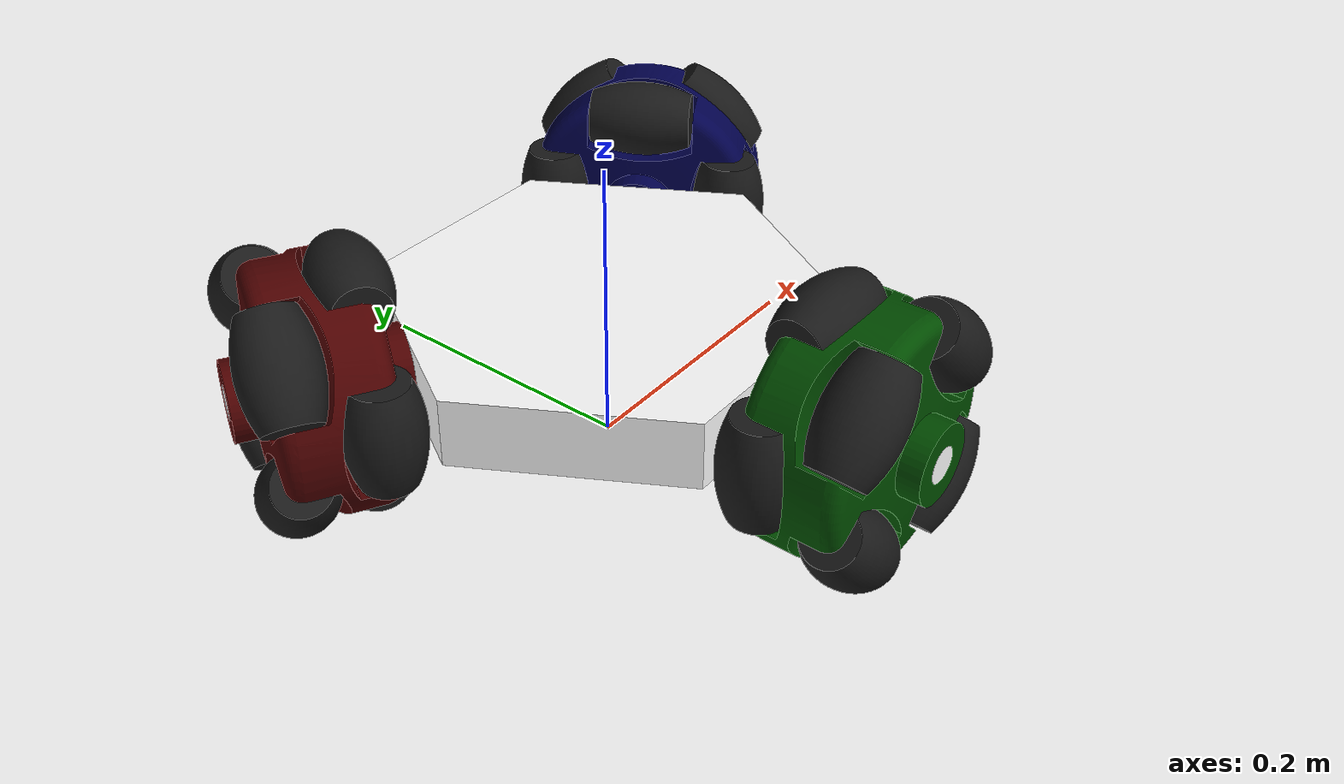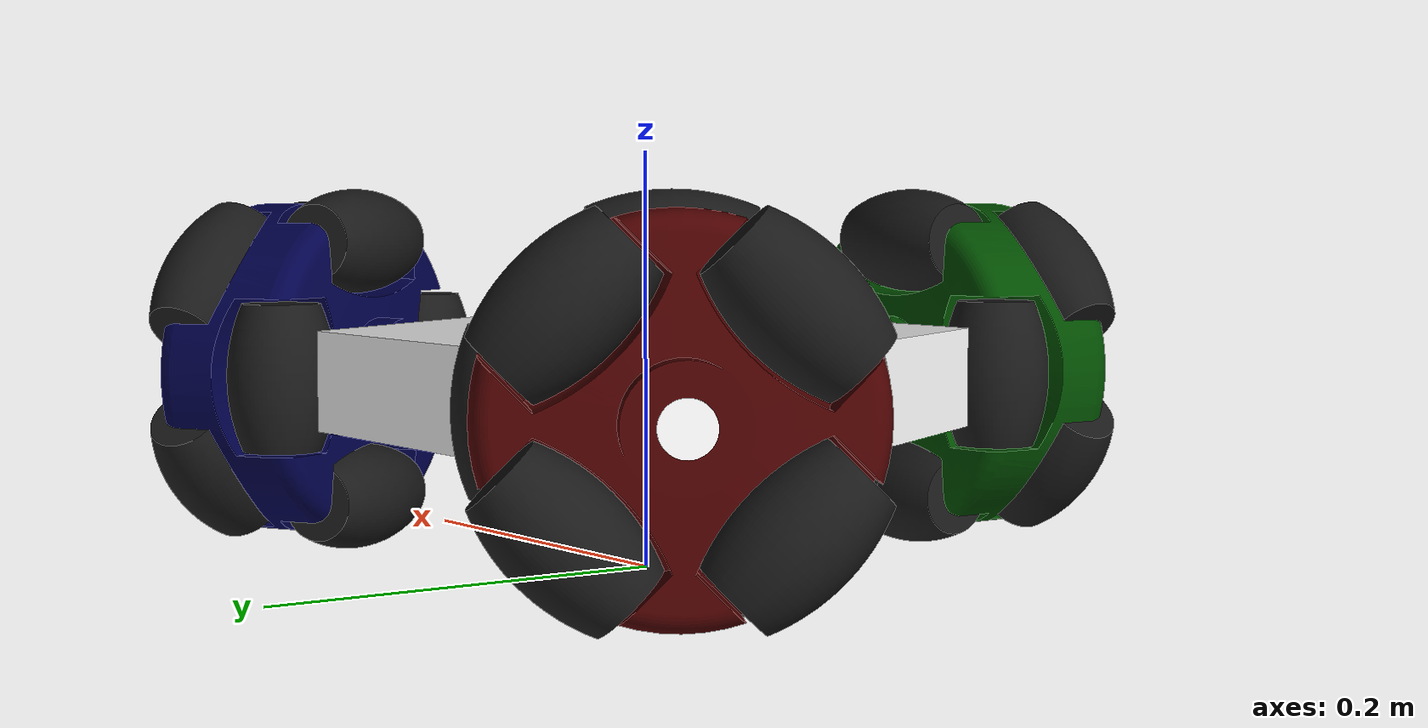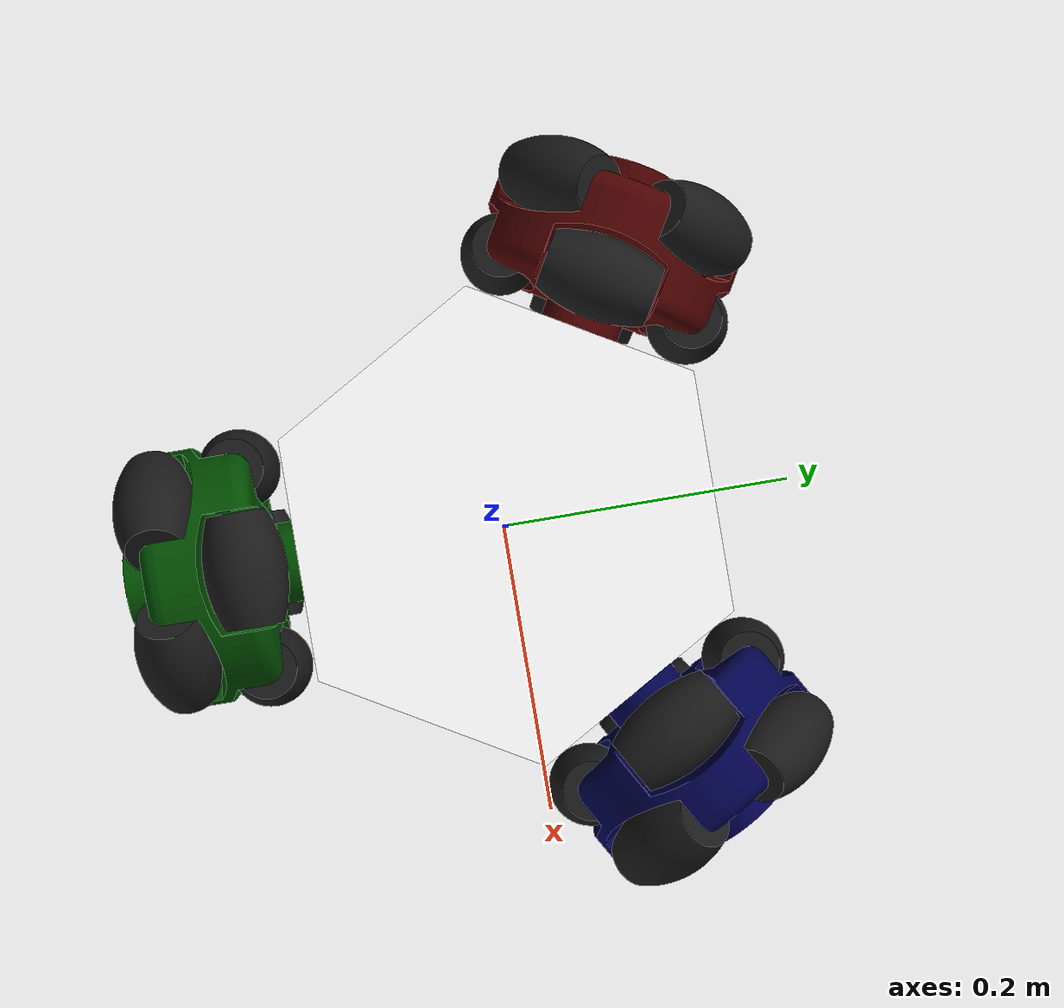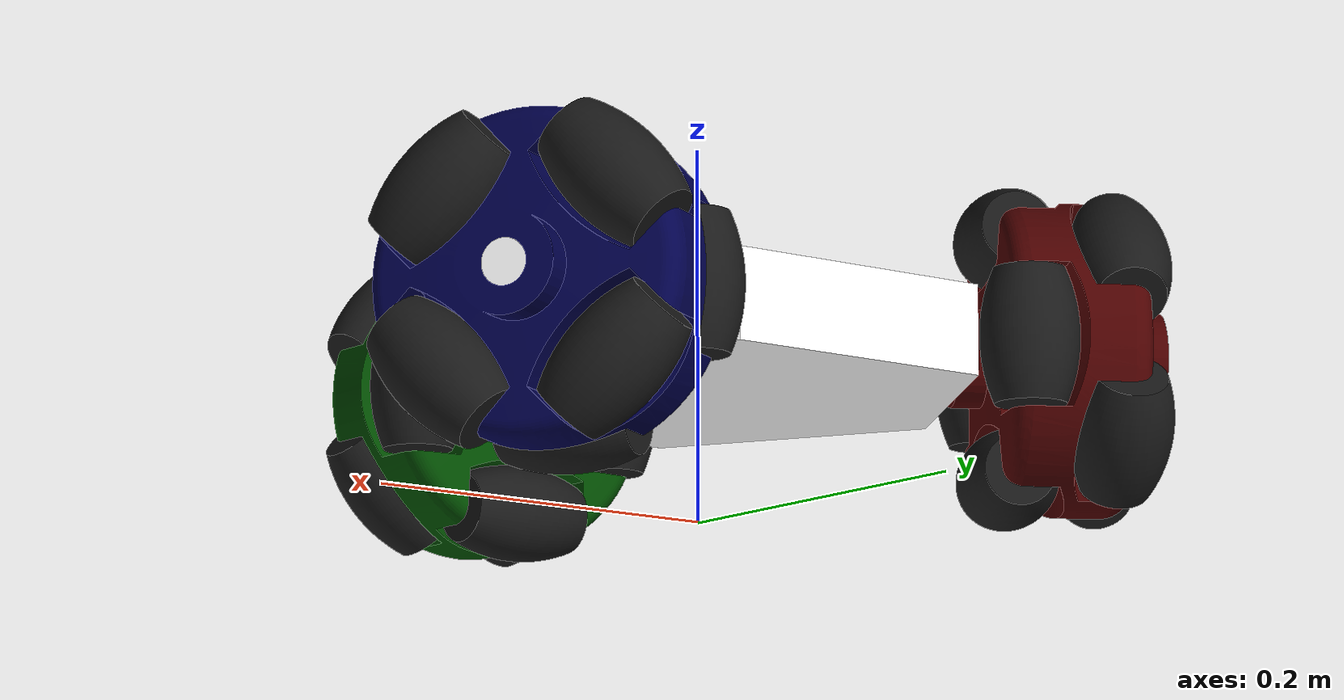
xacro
<?xml version="1.0"?>
<robot
	xmlns:xacro="http://www.ros.org/wiki/xacro"
	name="omni_pkg"
>

	<xacro:include filename="$(find omni_pkg)/xacro/rim.urdf.xacro"/>

	<link name="origin_link"/>
	<link name="base_link">

	<inertial>

		<mass value="8"/>
		<inertia
			ixx="1.895158"
			ixy="0"
			ixz="0"
			iyy="1.895158"
			iyz="0"
			izz="3.672949"
		/>

	</inertial>
	<visual>

		<geometry>

			<mesh filename="package://omni_pkg/mesh/base.stl"/>

		</geometry>
		<material name="base_material">

			<color rgba="1 1 1 1"/>

		</material>

	</visual>
	<collision>

		<geometry>

			<mesh filename="package://omni_pkg/mesh/base.stl"/>

		</geometry>

	</collision>

	</link>
	<joint
		name="base_joint"
		type="fixed"
	>

		<parent link="origin_link" />
		<child link="base_link" />
		<origin
			xyz="0 0 0.0909625"
		/>

	</joint>
	<xacro:rim_macro
		name="left"
		color="0.3 0 0"
		xyz="-0.165843864 0.09575 0"
		rpy="1.570796326794896 0 1.047197551196597"
	/>
	<xacro:rim_macro
		name="back"
		color="0 0.3 0"
		xyz="0 -0.1915 0"
		rpy="1.570796326794896 0 3.141592653589793"
	/>
	<xacro:rim_macro
		name="right"
		color="0 0 0.3"
		xyz="0.165843864 0.09575 0"
		rpy="1.570796326794896 0 -1.047197551196597"
	/>

</robot>

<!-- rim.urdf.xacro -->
<robot xmlns:xacro="http://www.ros.org/wiki/xacro">

	<xacro:include filename="$(find omni_pkg)/xacro/roller.urdf.xacro"/>

	<xacro:macro
		name="rim_macro"
		params="name color xyz rpy"
	>

		<link name="${name}_rim_link">

			<inertial>

				<mass value="5.8"/>
				<inertia
					ixx="0.144882"
					ixy="0"
					ixz="0"
					iyy="0.144882"
					iyz="0"
					izz="0.205727"
				/>

			</inertial>
			<visual>

				<geometry>

					<mesh filename="package://omni_pkg/mesh/rim.stl"/>

				</geometry>
				<material name="${name}_rim_material">

					<color rgba="${color} 1"/>

				</material>

			</visual>
			<collision>

				<geometry>

					<mesh filename="package://omni_pkg/mesh/rim.stl"/>

				</geometry>

			</collision>

		</link>
		<joint
			name="${name}_rim_joint"
			type="continuous"
		>

			<parent link="base_link" />
			<child link="${name}_rim_link" />
			<axis xyz="0 0 1"/>
			<origin
				xyz="${xyz}"
				rpy="${rpy}"
			/>
			<dynamics damping="0.0001" friction="0.00015"/>
		</joint>
		<xacro:roller_macro
			parent="${name}"
			name="e"
			xyz="0.064870625 0 0.02633125"
			rpy="-1.570796326794896 0 0"
		/>
		<xacro:roller_macro
			parent="${name}"
			name="ne"
			xyz="0.045870458 0.045870458 -0.02633125"
			rpy="-1.570796326794896 0 0.7853981633974483"
		/>
		<xacro:roller_macro
			parent="${name}"
			name="n"
			xyz="0 0.064870625 0.02633125"
			rpy="-1.570796326794896 0 1.570796326794896"
		/>
		<xacro:roller_macro
			parent="${name}"
			name="nw"
			xyz="-0.045870458 0.0458704589 -0.02633125"
			rpy="-1.570796326794896 0 2.356194490192345"
		/>
		<xacro:roller_macro
			parent="${name}"
			name="w"
			xyz="-0.064870625 0 0.02633125"
			rpy="-1.570796326794896 0 3.141592653589793"
		/>
		<xacro:roller_macro
			parent="${name}"
			name="sw"
			xyz="-0.045870458 -0.045870458 -0.02633125"
			rpy="-1.570796326794896 0 -2.356194490192345"
		/>
		<xacro:roller_macro
			parent="${name}"
			name="s"
			xyz="0 -0.064870625 0.02633125"
			rpy="-1.570796326794896 0 -1.570796326794896"
		/>
		<xacro:roller_macro
			parent="${name}"
			name="se"
			xyz="0.045870458 -0.045870458 -0.02633125"
			rpy="-1.570796326794896 0 -0.7853981633974483"
		/>

	</xacro:macro>

</robot>

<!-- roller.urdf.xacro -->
<robot xmlns:xacro="http://www.ros.org/wiki/xacro">

	<xacro:macro
		name="roller_macro"
		params="parent name xyz rpy"
	>

		<link name="roller_${name}_${parent}_rim_link">

			<inertial>

				<mass value="0.4"/>
				<inertia
					ixx="0.006626"
					ixy="0"
					ixz="0"
					iyy="0.006626"
					iyz="0"
					izz="0.003849"
				/>

			</inertial>
			<visual>

				<geometry>

					<mesh filename="package://omni_pkg/mesh/roller.stl"/>

				</geometry>
				<material name="roller_material">

					<color rgba="0.1 0.1 0.1 1"/>

				</material>

			</visual>
			<collision>

				<geometry>

					<mesh filename="package://omni_pkg/mesh/roller.stl"/>

				</geometry>

			</collision>

		</link>

		<gazebo reference="roller_${name}_${parent}_rim_link">
			<kp>1000000.0</kp>
			<kd>1.0</kd>
			<mu1>1</mu1>
			<mu2>1</mu2>
		</gazebo>

		<joint
			name="roller_${name}_${parent}_rim_joint"
			type="continuous"
		>

			<parent link="${parent}_rim_link"/>
			<child link="roller_${name}_${parent}_rim_link"/>
			<axis xyz="0 0 1"/>
			<origin
				xyz="${xyz}"
				rpy="${rpy}"
			/>
			<dynamics damping="0.0001" friction="0.00015"/>
		</joint>

	</xacro:macro>

</robot>
